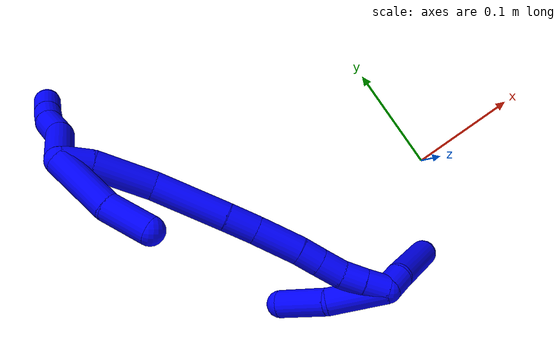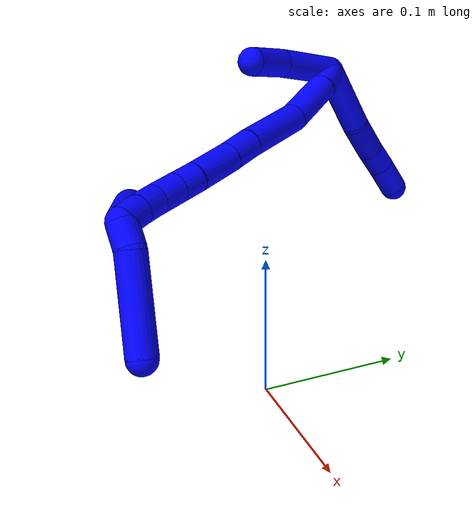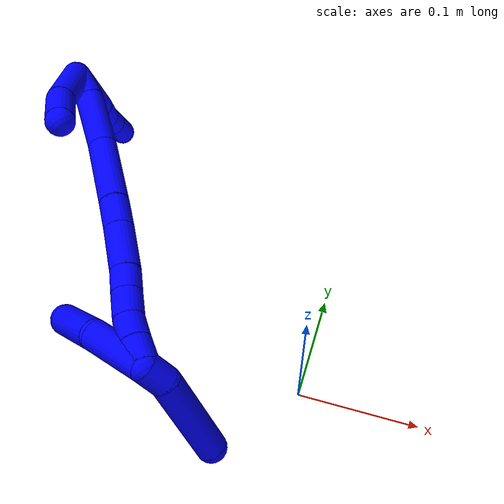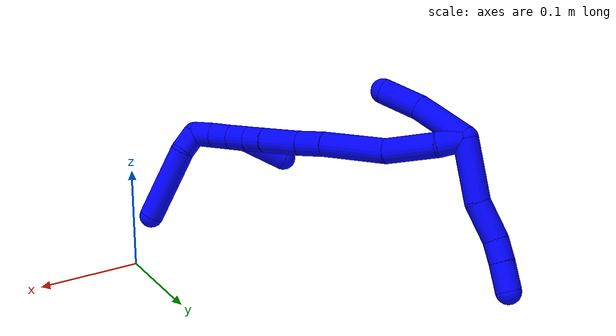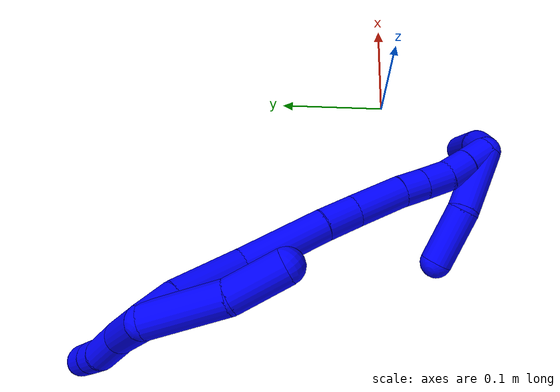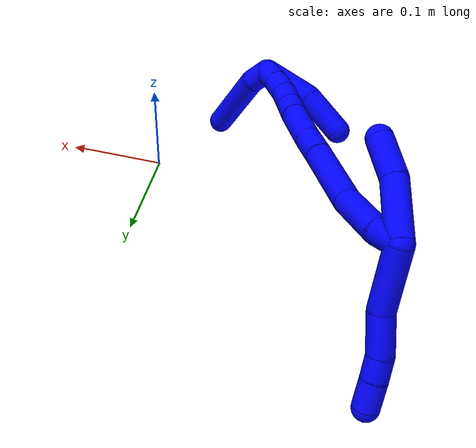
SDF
<sdf version="1.7">
 <world name="default">
  <model name="1">
   <static>0</static>
   <link name="1">
    <collision name="collision-cylinder-e_1_2_8">
     <pose>-0.030213 -0.003368 -0.003858 2.42393 -1.40288 -2.30589</pose>
     <geometry><cylinder><radius>0.0125</radius><length>0.061288</length></cylinder></geometry>
     <surface>
      <friction><ode><mu>1.16</mu><mu2>1.16</mu2><slip1>0</slip1><slip2>0</slip2></ode></friction>
      <contact><ode><kp>1e+06</kp><kd>1</kd><max_vel>0</max_vel><min_depth>0.001</min_depth></ode></contact>
     </surface>
    </collision>
    <visual name="visual-cylinder-e_1_2_8">
     <pose>-0.030213 -0.003368 -0.003858 2.42393 -1.40288 -2.30589</pose>
     <geometry><cylinder><radius>0.0125</radius><length>0.061288</length></cylinder></geometry>
     <material><ambient>0 0 1 1</ambient></material>
    </visual>
    <collision name="collision-cylinder-e_2_8_9">
     <pose>-0.079366 -0.009717 -0.005185 0.866705 -1.36719 -0.720896</pose>
     <geometry><cylinder><radius>0.0125</radius><length>0.038679</length></cylinder></geometry>
     <surface>
      <friction><ode><mu>1.16</mu><mu2>1.16</mu2><slip1>0</slip1><slip2>0</slip2></ode></friction>
      <contact><ode><kp>1e+06</kp><kd>1</kd><max_vel>0</max_vel><min_depth>0.001</min_depth></ode></contact>
     </surface>
    </collision>
    <visual name="visual-cylinder-e_2_8_9">
     <pose>-0.079366 -0.009717 -0.005185 0.866705 -1.36719 -0.720896</pose>
     <geometry><cylinder><radius>0.0125</radius><length>0.038679</length></cylinder></geometry>
     <material><ambient>0 0 1 1</ambient></material>
    </visual>
    <collision name="collision-cylinder-e_3_9_10">
     <pose>-0.109248 -0.012904 -0.003028 2.6371 -1.53171 -2.61788</pose>
     <geometry><cylinder><radius>0.0125</radius><length>0.021901</length></cylinder></geometry>
     <surface>
      <friction><ode><mu>1.16</mu><mu2>1.16</mu2><slip1>0</slip1><slip2>0</slip2></ode></friction>
      <contact><ode><kp>1e+06</kp><kd>1</kd><max_vel>0</max_vel><min_depth>0.001</min_depth></ode></contact>
     </surface>
    </collision>
    <visual name="visual-cylinder-e_3_9_10">
     <pose>-0.109248 -0.012904 -0.003028 2.6371 -1.53171 -2.61788</pose>
     <geometry><cylinder><radius>0.0125</radius><length>0.021901</length></cylinder></geometry>
     <material><ambient>0 0 1 1</ambient></material>
    </visual>
    <collision name="collision-cylinder-e_4_10_6">
     <pose>-0.134196 -0.013567 -0.004617 2.78244 -1.47845 -2.74849</pose>
     <geometry><cylinder><radius>0.0125</radius><length>0.028132</length></cylinder></geometry>
     <surface>
      <friction><ode><mu>1.16</mu><mu2>1.16</mu2><slip1>0</slip1><slip2>0</slip2></ode></friction>
      <contact><ode><kp>1e+06</kp><kd>1</kd><max_vel>0</max_vel><min_depth>0.001</min_depth></ode></contact>
     </surface>
    </collision>
    <visual name="visual-cylinder-e_4_10_6">
     <pose>-0.134196 -0.013567 -0.004617 2.78244 -1.47845 -2.74849</pose>
     <geometry><cylinder><radius>0.0125</radius><length>0.028132</length></cylinder></geometry>
     <material><ambient>0 0 1 1</ambient></material>
    </visual>
    <collision name="collision-cylinder-e_1_2_11">
     <pose>0.022497 -0.008481 -0.016967 2.67805 0.870305 2.20203</pose>
     <geometry><cylinder><radius>0.0125</radius><length>0.058853</length></cylinder></geometry>
     <surface>
      <friction><ode><mu>1.16</mu><mu2>1.16</mu2><slip1>0</slip1><slip2>0</slip2></ode></friction>
      <contact><ode><kp>1e+06</kp><kd>1</kd><max_vel>0</max_vel><min_depth>0.001</min_depth></ode></contact>
     </surface>
    </collision>
    <visual name="visual-cylinder-e_1_2_11">
     <pose>0.022497 -0.008481 -0.016967 2.67805 0.870305 2.20203</pose>
     <geometry><cylinder><radius>0.0125</radius><length>0.058853</length></cylinder></geometry>
     <material><ambient>0 0 1 1</ambient></material>
    </visual>
    <collision name="collision-cylinder-e_2_11_5">
     <pose>0.059059 -0.019392 -0.04875 2.97904 0.752735 2.73506</pose>
     <geometry><cylinder><radius>0.0125</radius><length>0.041147</length></cylinder></geometry>
     <surface>
      <friction><ode><mu>1.16</mu><mu2>1.16</mu2><slip1>0</slip1><slip2>0</slip2></ode></friction>
      <contact><ode><kp>1e+06</kp><kd>1</kd><max_vel>0</max_vel><min_depth>0.001</min_depth></ode></contact>
     </surface>
    </collision>
    <visual name="visual-cylinder-e_2_11_5">
     <pose>0.059059 -0.019392 -0.04875 2.97904 0.752735 2.73506</pose>
     <geometry><cylinder><radius>0.0125</radius><length>0.041147</length></cylinder></geometry>
     <material><ambient>0 0 1 1</ambient></material>
    </visual>
    <collision name="collision-cylinder-e_1_2_12">
     <pose>0.001236 -0.000813 -0.01334 3.08072 0.092203 1.97499</pose>
     <geometry><cylinder><radius>0.0125</radius><length>0.026843</length></cylinder></geometry>
     <surface>
      <friction><ode><mu>1.16</mu><mu2>1.16</mu2><slip1>0</slip1><slip2>0</slip2></ode></friction>
      <contact><ode><kp>1e+06</kp><kd>1</kd><max_vel>0</max_vel><min_depth>0.001</min_depth></ode></contact>
     </surface>
    </collision>
    <visual name="visual-cylinder-e_1_2_12">
     <pose>0.001236 -0.000813 -0.01334 3.08072 0.092203 1.97499</pose>
     <geometry><cylinder><radius>0.0125</radius><length>0.026843</length></cylinder></geometry>
     <material><ambient>0 0 1 1</ambient></material>
    </visual>
    <collision name="collision-cylinder-e_2_12_13">
     <pose>0.008437 -0.00789 -0.051951 2.89862 0.225215 1.49428</pose>
     <geometry><cylinder><radius>0.0125</radius><length>0.053423</length></cylinder></geometry>
     <surface>
      <friction><ode><mu>1.16</mu><mu2>1.16</mu2><slip1>0</slip1><slip2>0</slip2></ode></friction>
      <contact><ode><kp>1e+06</kp><kd>1</kd><max_vel>0</max_vel><min_depth>0.001</min_depth></ode></contact>
     </surface>
    </collision>
    <visual name="visual-cylinder-e_2_12_13">
     <pose>0.008437 -0.00789 -0.051951 2.89862 0.225215 1.49428</pose>
     <geometry><cylinder><radius>0.0125</radius><length>0.053423</length></cylinder></geometry>
     <material><ambient>0 0 1 1</ambient></material>
    </visual>
    <collision name="collision-cylinder-e_3_13_14">
     <pose>0.028563 -0.020777 -0.10655 2.91951 0.440181 2.21684</pose>
     <geometry><cylinder><radius>0.0125</radius><length>0.066467</length></cylinder></geometry>
     <surface>
      <friction><ode><mu>1.16</mu><mu2>1.16</mu2><slip1>0</slip1><slip2>0</slip2></ode></friction>
      <contact><ode><kp>1e+06</kp><kd>1</kd><max_vel>0</max_vel><min_depth>0.001</min_depth></ode></contact>
     </surface>
    </collision>
    <visual name="visual-cylinder-e_3_13_14">
     <pose>0.028563 -0.020777 -0.10655 2.91951 0.440181 2.21684</pose>
     <geometry><cylinder><radius>0.0125</radius><length>0.066467</length></cylinder></geometry>
     <material><ambient>0 0 1 1</ambient></material>
    </visual>
    <collision name="collision-cylinder-e_4_14_15">
     <pose>0.04778 -0.030747 -0.148179 2.87588 0.377573 1.92082</pose>
     <geometry><cylinder><radius>0.0125</radius><length>0.02743</length></cylinder></geometry>
     <surface>
      <friction><ode><mu>1.16</mu><mu2>1.16</mu2><slip1>0</slip1><slip2>0</slip2></ode></friction>
      <contact><ode><kp>1e+06</kp><kd>1</kd><max_vel>0</max_vel><min_depth>0.001</min_depth></ode></contact>
     </surface>
    </collision>
    <visual name="visual-cylinder-e_4_14_15">
     <pose>0.04778 -0.030747 -0.148179 2.87588 0.377573 1.92082</pose>
     <geometry><cylinder><radius>0.0125</radius><length>0.02743</length></cylinder></geometry>
     <material><ambient>0 0 1 1</ambient></material>
    </visual>
    <collision name="collision-cylinder-e_5_15_16">
     <pose>0.061237 -0.03928 -0.178644 2.86349 0.418498 1.97619</pose>
     <geometry><cylinder><radius>0.0125</radius><length>0.041346</length></cylinder></geometry>
     <surface>
      <friction><ode><mu>1.16</mu><mu2>1.16</mu2><slip1>0</slip1><slip2>0</slip2></ode></friction>
      <contact><ode><kp>1e+06</kp><kd>1</kd><max_vel>0</max_vel><min_depth>0.001</min_depth></ode></contact>
     </surface>
    </collision>
    <visual name="visual-cylinder-e_5_15_16">
     <pose>0.061237 -0.03928 -0.178644 2.86349 0.418498 1.97619</pose>
     <geometry><cylinder><radius>0.0125</radius><length>0.041346</length></cylinder></geometry>
     <material><ambient>0 0 1 1</ambient></material>
    </visual>
    <collision name="collision-cylinder-e_6_16_17">
     <pose>0.073738 -0.047762 -0.205362 2.77388 0.42048 1.70799</pose>
     <geometry><cylinder><radius>0.0125</radius><length>0.020085</length></cylinder></geometry>
     <surface>
      <friction><ode><mu>1.16</mu><mu2>1.16</mu2><slip1>0</slip1><slip2>0</slip2></ode></friction>
      <contact><ode><kp>1e+06</kp><kd>1</kd><max_vel>0</max_vel><min_depth>0.001</min_depth></ode></contact>
     </surface>
    </collision>
    <visual name="visual-cylinder-e_6_16_17">
     <pose>0.073738 -0.047762 -0.205362 2.77388 0.42048 1.70799</pose>
     <geometry><cylinder><radius>0.0125</radius><length>0.020085</length></cylinder></geometry>
     <material><ambient>0 0 1 1</ambient></material>
    </visual>
    <collision name="collision-cylinder-e_7_17_18">
     <pose>0.082477 -0.054534 -0.223544 2.79508 0.425546 1.77988</pose>
     <geometry><cylinder><radius>0.0125</radius><length>0.022477</length></cylinder></geometry>
     <surface>
      <friction><ode><mu>1.16</mu><mu2>1.16</mu2><slip1>0</slip1><slip2>0</slip2></ode></friction>
      <contact><ode><kp>1e+06</kp><kd>1</kd><max_vel>0</max_vel><min_depth>0.001</min_depth></ode></contact>
     </surface>
    </collision>
    <visual name="visual-cylinder-e_7_17_18">
     <pose>0.082477 -0.054534 -0.223544 2.79508 0.425546 1.77988</pose>
     <geometry><cylinder><radius>0.0125</radius><length>0.022477</length></cylinder></geometry>
     <material><ambient>0 0 1 1</ambient></material>
    </visual>
    <collision name="collision-cylinder-e_8_18_19">
     <pose>0.091584 -0.059356 -0.242489 2.99816 0.443132 2.52416</pose>
     <geometry><cylinder><radius>0.0125</radius><length>0.020839</length></cylinder></geometry>
     <surface>
      <friction><ode><mu>1.16</mu><mu2>1.16</mu2><slip1>0</slip1><slip2>0</slip2></ode></friction>
      <contact><ode><kp>1e+06</kp><kd>1</kd><max_vel>0</max_vel><min_depth>0.001</min_depth></ode></contact>
     </surface>
    </collision>
    <visual name="visual-cylinder-e_8_18_19">
     <pose>0.091584 -0.059356 -0.242489 2.99816 0.443132 2.52416</pose>
     <geometry><cylinder><radius>0.0125</radius><length>0.020839</length></cylinder></geometry>
     <material><ambient>0 0 1 1</ambient></material>
    </visual>
    <collision name="collision-cylinder-e_9_19_1">
     <pose>0.100093 -0.061807 -0.261482 3.02775 0.393359 2.58453</pose>
     <geometry><cylinder><radius>0.0125</radius><length>0.02109</length></cylinder></geometry>
     <surface>
      <friction><ode><mu>1.16</mu><mu2>1.16</mu2><slip1>0</slip1><slip2>0</slip2></ode></friction>
      <contact><ode><kp>1e+06</kp><kd>1</kd><max_vel>0</max_vel><min_depth>0.001</min_depth></ode></contact>
     </surface>
    </collision>
    <visual name="visual-cylinder-e_9_19_1">
     <pose>0.100093 -0.061807 -0.261482 3.02775 0.393359 2.58453</pose>
     <geometry><cylinder><radius>0.0125</radius><length>0.02109</length></cylinder></geometry>
     <material><ambient>0 0 1 1</ambient></material>
    </visual>
    <collision name="collision-cylinder-e_1_1_20">
     <pose>0.097284 -0.061078 -0.279606 -2.92758 -0.670181 2.54316</pose>
     <geometry><cylinder><radius>0.0125</radius><length>0.02206</length></cylinder></geometry>
     <surface>
      <friction><ode><mu>1.16</mu><mu2>1.16</mu2><slip1>0</slip1><slip2>0</slip2></ode></friction>
      <contact><ode><kp>1e+06</kp><kd>1</kd><max_vel>0</max_vel><min_depth>0.001</min_depth></ode></contact>
     </surface>
    </collision>
    <visual name="visual-cylinder-e_1_1_20">
     <pose>0.097284 -0.061078 -0.279606 -2.92758 -0.670181 2.54316</pose>
     <geometry><cylinder><radius>0.0125</radius><length>0.02206</length></cylinder></geometry>
     <material><ambient>0 0 1 1</ambient></material>
    </visual>
    <collision name="collision-cylinder-e_2_20_4">
     <pose>0.063744 -0.064927 -0.315875 2.94001 -0.754401 -2.64172</pose>
     <geometry><cylinder><radius>0.0125</radius><length>0.07794</length></cylinder></geometry>
     <surface>
      <friction><ode><mu>1.16</mu><mu2>1.16</mu2><slip1>0</slip1><slip2>0</slip2></ode></friction>
      <contact><ode><kp>1e+06</kp><kd>1</kd><max_vel>0</max_vel><min_depth>0.001</min_depth></ode></contact>
     </surface>
    </collision>
    <visual name="visual-cylinder-e_2_20_4">
     <pose>0.063744 -0.064927 -0.315875 2.94001 -0.754401 -2.64172</pose>
     <geometry><cylinder><radius>0.0125</radius><length>0.07794</length></cylinder></geometry>
     <material><ambient>0 0 1 1</ambient></material>
    </visual>
    <collision name="collision-cylinder-e_1_1_21">
     <pose>0.095309 -0.075131 -0.249052 0.504882 -0.336167 -0.087482</pose>
     <geometry><cylinder><radius>0.0125</radius><length>0.053511</length></cylinder></geometry>
     <surface>
      <friction><ode><mu>1.16</mu><mu2>1.16</mu2><slip1>0</slip1><slip2>0</slip2></ode></friction>
      <contact><ode><kp>1e+06</kp><kd>1</kd><max_vel>0</max_vel><min_depth>0.001</min_depth></ode></contact>
     </surface>
    </collision>
    <visual name="visual-cylinder-e_1_1_21">
     <pose>0.095309 -0.075131 -0.249052 0.504882 -0.336167 -0.087482</pose>
     <geometry><cylinder><radius>0.0125</radius><length>0.053511</length></cylinder></geometry>
     <material><ambient>0 0 1 1</ambient></material>
    </visual>
    <collision name="collision-cylinder-e_2_21_3">
     <pose>0.072388 -0.098291 -0.21205 0.633565 -0.651499 -0.220567</pose>
     <geometry><cylinder><radius>0.0125</radius><length>0.046489</length></cylinder></geometry>
     <surface>
      <friction><ode><mu>1.16</mu><mu2>1.16</mu2><slip1>0</slip1><slip2>0</slip2></ode></friction>
      <contact><ode><kp>1e+06</kp><kd>1</kd><max_vel>0</max_vel><min_depth>0.001</min_depth></ode></contact>
     </surface>
    </collision>
    <visual name="visual-cylinder-e_2_21_3">
     <pose>0.072388 -0.098291 -0.21205 0.633565 -0.651499 -0.220567</pose>
     <geometry><cylinder><radius>0.0125</radius><length>0.046489</length></cylinder></geometry>
     <material><ambient>0 0 1 1</ambient></material>
    </visual>
    <collision name="collision-sphere-3">
     <pose>0.058293 -0.109234 -0.197153 0 -0 0</pose>
     <geometry><sphere><radius>0.0125</radius></sphere></geometry>
     <surface>
      <friction><ode><mu>1.16</mu><mu2>1.16</mu2><slip1>0</slip1><slip2>0</slip2></ode></friction>
      <contact><ode><kp>1e+06</kp><kd>1</kd><max_vel>0</max_vel><min_depth>0.001</min_depth></ode></contact>
     </surface>
    </collision>
    <visual name="visual-sphere-3">
     <pose>0.058293 -0.109234 -0.197153 0 -0 0</pose>
     <geometry><sphere><radius>0.0125</radius></sphere></geometry>
     <material><ambient>0 0 1 1</ambient></material>
    </visual>
    <collision name="collision-sphere-21">
     <pose>0.086483 -0.087348 -0.226946 0 -0 0</pose>
     <geometry><sphere><radius>0.0125</radius></sphere></geometry>
     <surface>
      <friction><ode><mu>1.16</mu><mu2>1.16</mu2><slip1>0</slip1><slip2>0</slip2></ode></friction>
      <contact><ode><kp>1e+06</kp><kd>1</kd><max_vel>0</max_vel><min_depth>0.001</min_depth></ode></contact>
     </surface>
    </collision>
    <visual name="visual-sphere-21">
     <pose>0.086483 -0.087348 -0.226946 0 -0 0</pose>
     <geometry><sphere><radius>0.0125</radius></sphere></geometry>
     <material><ambient>0 0 1 1</ambient></material>
    </visual>
    <collision name="collision-sphere-4">
     <pose>0.037056 -0.070613 -0.343696 0 -0 0</pose>
     <geometry><sphere><radius>0.0125</radius></sphere></geometry>
     <surface>
      <friction><ode><mu>1.16</mu><mu2>1.16</mu2><slip1>0</slip1><slip2>0</slip2></ode></friction>
      <contact><ode><kp>1e+06</kp><kd>1</kd><max_vel>0</max_vel><min_depth>0.001</min_depth></ode></contact>
     </surface>
    </collision>
    <visual name="visual-sphere-4">
     <pose>0.037056 -0.070613 -0.343696 0 -0 0</pose>
     <geometry><sphere><radius>0.0125</radius></sphere></geometry>
     <material><ambient>0 0 1 1</ambient></material>
    </visual>
    <collision name="collision-sphere-20">
     <pose>0.090433 -0.059242 -0.288053 0 -0 0</pose>
     <geometry><sphere><radius>0.0125</radius></sphere></geometry>
     <surface>
      <friction><ode><mu>1.16</mu><mu2>1.16</mu2><slip1>0</slip1><slip2>0</slip2></ode></friction>
      <contact><ode><kp>1e+06</kp><kd>1</kd><max_vel>0</max_vel><min_depth>0.001</min_depth></ode></contact>
     </surface>
    </collision>
    <visual name="visual-sphere-20">
     <pose>0.090433 -0.059242 -0.288053 0 -0 0</pose>
     <geometry><sphere><radius>0.0125</radius></sphere></geometry>
     <material><ambient>0 0 1 1</ambient></material>
    </visual>
    <collision name="collision-sphere-11">
     <pose>0.044995 -0.016962 -0.033933 0 -0 0</pose>
     <geometry><sphere><radius>0.0125</radius></sphere></geometry>
     <surface>
      <friction><ode><mu>1.16</mu><mu2>1.16</mu2><slip1>0</slip1><slip2>0</slip2></ode></friction>
      <contact><ode><kp>1e+06</kp><kd>1</kd><max_vel>0</max_vel><min_depth>0.001</min_depth></ode></contact>
     </surface>
    </collision>
    <visual name="visual-sphere-11">
     <pose>0.044995 -0.016962 -0.033933 0 -0 0</pose>
     <geometry><sphere><radius>0.0125</radius></sphere></geometry>
     <material><ambient>0 0 1 1</ambient></material>
    </visual>
    <collision name="collision-sphere-6">
     <pose>-0.148202 -0.014023 -0.005831 0 -0 0</pose>
     <geometry><sphere><radius>0.0125</radius></sphere></geometry>
     <surface>
      <friction><ode><mu>1.16</mu><mu2>1.16</mu2><slip1>0</slip1><slip2>0</slip2></ode></friction>
      <contact><ode><kp>1e+06</kp><kd>1</kd><max_vel>0</max_vel><min_depth>0.001</min_depth></ode></contact>
     </surface>
    </collision>
    <visual name="visual-sphere-6">
     <pose>-0.148202 -0.014023 -0.005831 0 -0 0</pose>
     <geometry><sphere><radius>0.0125</radius></sphere></geometry>
     <material><ambient>0 0 1 1</ambient></material>
    </visual>
    <collision name="collision-sphere-10">
     <pose>-0.12019 -0.013111 -0.003403 0 -0 0</pose>
     <geometry><sphere><radius>0.0125</radius></sphere></geometry>
     <surface>
      <friction><ode><mu>1.16</mu><mu2>1.16</mu2><slip1>0</slip1><slip2>0</slip2></ode></friction>
      <contact><ode><kp>1e+06</kp><kd>1</kd><max_vel>0</max_vel><min_depth>0.001</min_depth></ode></contact>
     </surface>
    </collision>
    <visual name="visual-sphere-10">
     <pose>-0.12019 -0.013111 -0.003403 0 -0 0</pose>
     <geometry><sphere><radius>0.0125</radius></sphere></geometry>
     <material><ambient>0 0 1 1</ambient></material>
    </visual>
    <collision name="collision-sphere-9">
     <pose>-0.098306 -0.012697 -0.002653 0 -0 0</pose>
     <geometry><sphere><radius>0.0125</radius></sphere></geometry>
     <surface>
      <friction><ode><mu>1.16</mu><mu2>1.16</mu2><slip1>0</slip1><slip2>0</slip2></ode></friction>
      <contact><ode><kp>1e+06</kp><kd>1</kd><max_vel>0</max_vel><min_depth>0.001</min_depth></ode></contact>
     </surface>
    </collision>
    <visual name="visual-sphere-9">
     <pose>-0.098306 -0.012697 -0.002653 0 -0 0</pose>
     <geometry><sphere><radius>0.0125</radius></sphere></geometry>
     <material><ambient>0 0 1 1</ambient></material>
    </visual>
    <collision name="collision-sphere-2">
     <geometry><sphere><radius>0.0125</radius></sphere></geometry>
     <surface>
      <friction><ode><mu>1.16</mu><mu2>1.16</mu2><slip1>0</slip1><slip2>0</slip2></ode></friction>
      <contact><ode><kp>1e+06</kp><kd>1</kd><max_vel>0</max_vel><min_depth>0.001</min_depth></ode></contact>
     </surface>
    </collision>
    <visual name="visual-sphere-2">
     <geometry><sphere><radius>0.0125</radius></sphere></geometry>
     <material><ambient>0 0 1 1</ambient></material>
    </visual>
    <collision name="collision-sphere-19">
     <pose>0.096051 -0.060701 -0.251805 0 -0 0</pose>
     <geometry><sphere><radius>0.0125</radius></sphere></geometry>
     <surface>
      <friction><ode><mu>1.16</mu><mu2>1.16</mu2><slip1>0</slip1><slip2>0</slip2></ode></friction>
      <contact><ode><kp>1e+06</kp><kd>1</kd><max_vel>0</max_vel><min_depth>0.001</min_depth></ode></contact>
     </surface>
    </collision>
    <visual name="visual-sphere-19">
     <pose>0.096051 -0.060701 -0.251805 0 -0 0</pose>
     <geometry><sphere><radius>0.0125</radius></sphere></geometry>
     <material><ambient>0 0 1 1</ambient></material>
    </visual>
    <collision name="collision-sphere-8">
     <pose>-0.060426 -0.006736 -0.007716 0 -0 0</pose>
     <geometry><sphere><radius>0.0125</radius></sphere></geometry>
     <surface>
      <friction><ode><mu>1.16</mu><mu2>1.16</mu2><slip1>0</slip1><slip2>0</slip2></ode></friction>
      <contact><ode><kp>1e+06</kp><kd>1</kd><max_vel>0</max_vel><min_depth>0.001</min_depth></ode></contact>
     </surface>
    </collision>
    <visual name="visual-sphere-8">
     <pose>-0.060426 -0.006736 -0.007716 0 -0 0</pose>
     <geometry><sphere><radius>0.0125</radius></sphere></geometry>
     <material><ambient>0 0 1 1</ambient></material>
    </visual>
    <collision name="collision-sphere-5">
     <pose>0.073124 -0.021822 -0.063567 0 -0 0</pose>
     <geometry><sphere><radius>0.0125</radius></sphere></geometry>
     <surface>
      <friction><ode><mu>1.16</mu><mu2>1.16</mu2><slip1>0</slip1><slip2>0</slip2></ode></friction>
      <contact><ode><kp>1e+06</kp><kd>1</kd><max_vel>0</max_vel><min_depth>0.001</min_depth></ode></contact>
     </surface>
    </collision>
    <visual name="visual-sphere-5">
     <pose>0.073124 -0.021822 -0.063567 0 -0 0</pose>
     <geometry><sphere><radius>0.0125</radius></sphere></geometry>
     <material><ambient>0 0 1 1</ambient></material>
    </visual>
    <collision name="collision-sphere-12">
     <pose>0.002471 -0.001626 -0.026679 0 -0 0</pose>
     <geometry><sphere><radius>0.0125</radius></sphere></geometry>
     <surface>
      <friction><ode><mu>1.16</mu><mu2>1.16</mu2><slip1>0</slip1><slip2>0</slip2></ode></friction>
      <contact><ode><kp>1e+06</kp><kd>1</kd><max_vel>0</max_vel><min_depth>0.001</min_depth></ode></contact>
     </surface>
    </collision>
    <visual name="visual-sphere-12">
     <pose>0.002471 -0.001626 -0.026679 0 -0 0</pose>
     <geometry><sphere><radius>0.0125</radius></sphere></geometry>
     <material><ambient>0 0 1 1</ambient></material>
    </visual>
    <collision name="collision-sphere-13">
     <pose>0.014402 -0.014154 -0.077223 0 -0 0</pose>
     <geometry><sphere><radius>0.0125</radius></sphere></geometry>
     <surface>
      <friction><ode><mu>1.16</mu><mu2>1.16</mu2><slip1>0</slip1><slip2>0</slip2></ode></friction>
      <contact><ode><kp>1e+06</kp><kd>1</kd><max_vel>0</max_vel><min_depth>0.001</min_depth></ode></contact>
     </surface>
    </collision>
    <visual name="visual-sphere-13">
     <pose>0.014402 -0.014154 -0.077223 0 -0 0</pose>
     <geometry><sphere><radius>0.0125</radius></sphere></geometry>
     <material><ambient>0 0 1 1</ambient></material>
    </visual>
    <collision name="collision-sphere-14">
     <pose>0.042723 -0.027399 -0.135877 0 -0 0</pose>
     <geometry><sphere><radius>0.0125</radius></sphere></geometry>
     <surface>
      <friction><ode><mu>1.16</mu><mu2>1.16</mu2><slip1>0</slip1><slip2>0</slip2></ode></friction>
      <contact><ode><kp>1e+06</kp><kd>1</kd><max_vel>0</max_vel><min_depth>0.001</min_depth></ode></contact>
     </surface>
    </collision>
    <visual name="visual-sphere-14">
     <pose>0.042723 -0.027399 -0.135877 0 -0 0</pose>
     <geometry><sphere><radius>0.0125</radius></sphere></geometry>
     <material><ambient>0 0 1 1</ambient></material>
    </visual>
    <collision name="collision-sphere-15">
     <pose>0.052836 -0.034095 -0.16048 0 -0 0</pose>
     <geometry><sphere><radius>0.0125</radius></sphere></geometry>
     <surface>
      <friction><ode><mu>1.16</mu><mu2>1.16</mu2><slip1>0</slip1><slip2>0</slip2></ode></friction>
      <contact><ode><kp>1e+06</kp><kd>1</kd><max_vel>0</max_vel><min_depth>0.001</min_depth></ode></contact>
     </surface>
    </collision>
    <visual name="visual-sphere-15">
     <pose>0.052836 -0.034095 -0.16048 0 -0 0</pose>
     <geometry><sphere><radius>0.0125</radius></sphere></geometry>
     <material><ambient>0 0 1 1</ambient></material>
    </visual>
    <collision name="collision-sphere-16">
     <pose>0.069639 -0.044466 -0.196807 0 -0 0</pose>
     <geometry><sphere><radius>0.0125</radius></sphere></geometry>
     <surface>
      <friction><ode><mu>1.16</mu><mu2>1.16</mu2><slip1>0</slip1><slip2>0</slip2></ode></friction>
      <contact><ode><kp>1e+06</kp><kd>1</kd><max_vel>0</max_vel><min_depth>0.001</min_depth></ode></contact>
     </surface>
    </collision>
    <visual name="visual-sphere-16">
     <pose>0.069639 -0.044466 -0.196807 0 -0 0</pose>
     <geometry><sphere><radius>0.0125</radius></sphere></geometry>
     <material><ambient>0 0 1 1</ambient></material>
    </visual>
    <collision name="collision-sphere-17">
     <pose>0.077837 -0.051057 -0.213917 0 -0 0</pose>
     <geometry><sphere><radius>0.0125</radius></sphere></geometry>
     <surface>
      <friction><ode><mu>1.16</mu><mu2>1.16</mu2><slip1>0</slip1><slip2>0</slip2></ode></friction>
      <contact><ode><kp>1e+06</kp><kd>1</kd><max_vel>0</max_vel><min_depth>0.001</min_depth></ode></contact>
     </surface>
    </collision>
    <visual name="visual-sphere-17">
     <pose>0.077837 -0.051057 -0.213917 0 -0 0</pose>
     <geometry><sphere><radius>0.0125</radius></sphere></geometry>
     <material><ambient>0 0 1 1</ambient></material>
    </visual>
    <collision name="collision-sphere-18">
     <pose>0.087116 -0.05801 -0.233172 0 -0 0</pose>
     <geometry><sphere><radius>0.0125</radius></sphere></geometry>
     <surface>
      <friction><ode><mu>1.16</mu><mu2>1.16</mu2><slip1>0</slip1><slip2>0</slip2></ode></friction>
      <contact><ode><kp>1e+06</kp><kd>1</kd><max_vel>0</max_vel><min_depth>0.001</min_depth></ode></contact>
     </surface>
    </collision>
    <visual name="visual-sphere-18">
     <pose>0.087116 -0.05801 -0.233172 0 -0 0</pose>
     <geometry><sphere><radius>0.0125</radius></sphere></geometry>
     <material><ambient>0 0 1 1</ambient></material>
    </visual>
    <collision name="collision-sphere-1">
     <pose>0.104135 -0.062914 -0.271159 0 -0 0</pose>
     <geometry><sphere><radius>0.0125</radius></sphere></geometry>
     <surface>
      <friction><ode><mu>1.16</mu><mu2>1.16</mu2><slip1>0</slip1><slip2>0</slip2></ode></friction>
      <contact><ode><kp>1e+06</kp><kd>1</kd><max_vel>0</max_vel><min_depth>0.001</min_depth></ode></contact>
     </surface>
    </collision>
    <visual name="visual-sphere-1">
     <pose>0.104135 -0.062914 -0.271159 0 -0 0</pose>
     <geometry><sphere><radius>0.0125</radius></sphere></geometry>
     <material><ambient>0 0 1 1</ambient></material>
    </visual>
    <inertial>
     <pose>0.029098 -0.035411 -0.131992 0 -0 0</pose>
     <mass>0.75</mass>
     <inertia><ixx>-7e-06</ixx><ixy>0</ixy><ixz>0</ixz><iyy>0.000174</iyy><iyz>0</iyz><izz>4.6e-05</izz></inertia>
    </inertial>
   </link>
   <pose>-0.263575 0.178371 0.141673 0.890366 -0.944767 -1.61672</pose>
  </model>
 </world>
</sdf>
